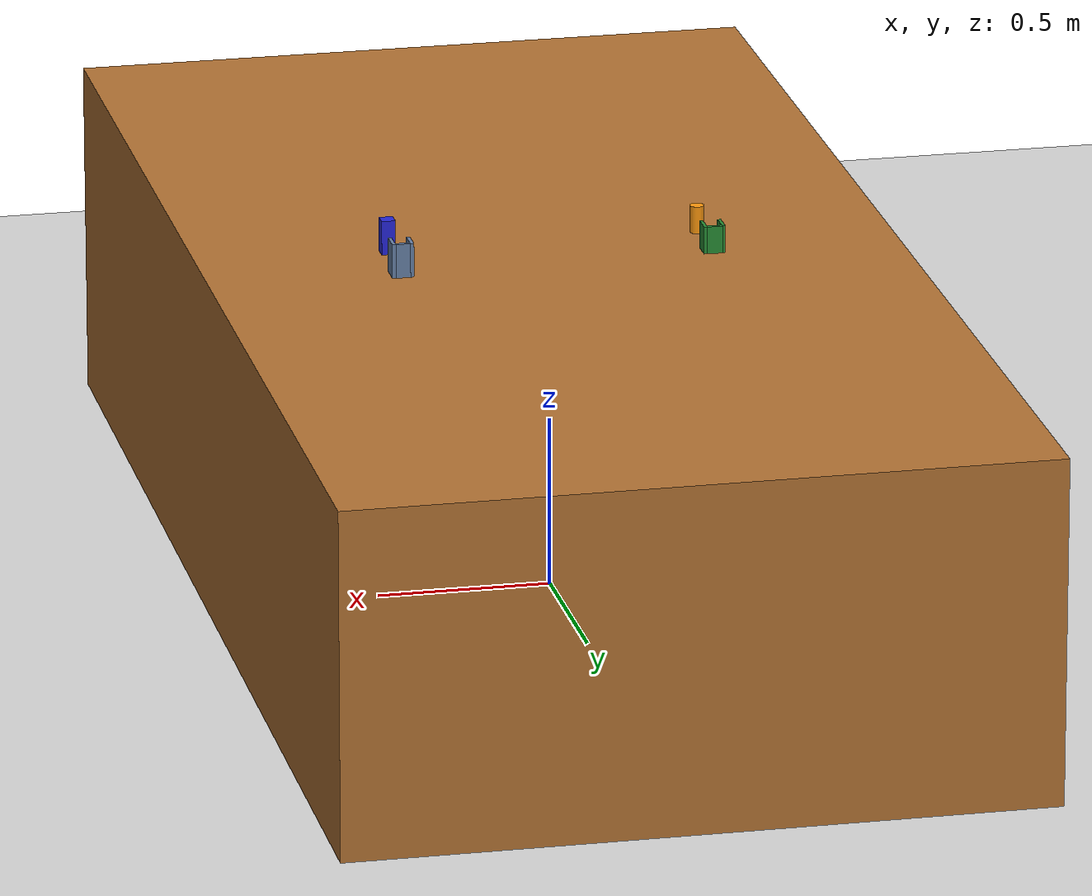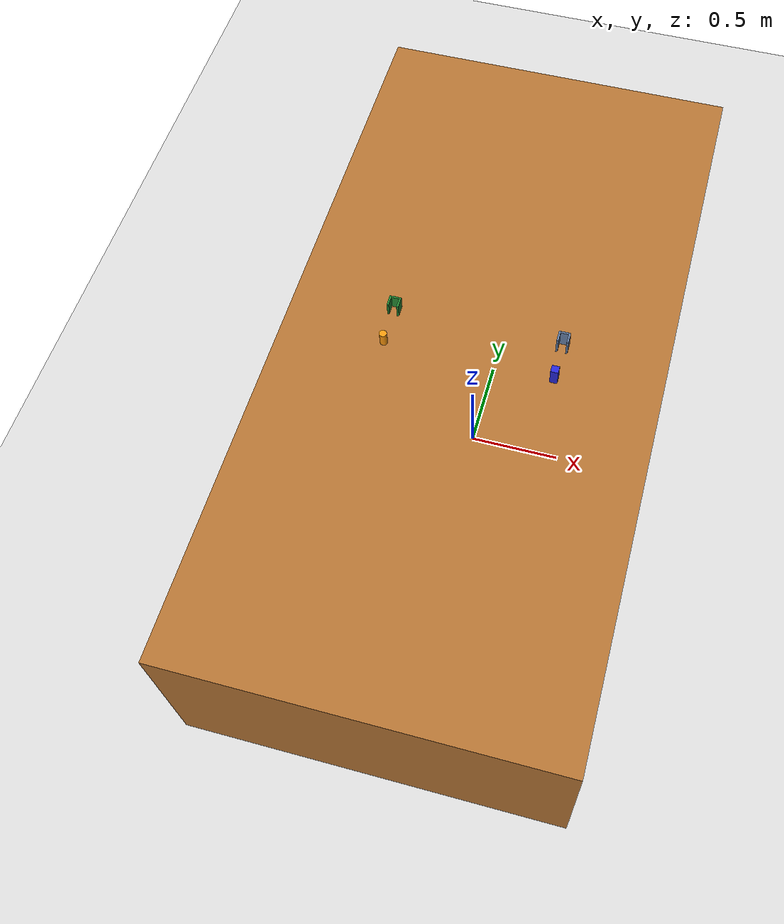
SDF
<?xml version="1.0" ?>
<sdf version="1.9">

  <world name="peg_in_hole_world">

    <physics name="1ms" type="ignored">
      <max_step_size>0.001</max_step_size>
      <real_time_factor>2.0</real_time_factor>
    </physics>

    <plugin filename="gz-sim-physics-system" name="gz::sim::systems::Physics"/>
    <plugin filename="gz-sim-user-commands-system" name="gz::sim::systems::UserCommands"/>
    <plugin filename="gz-sim-scene-broadcaster-system" name="gz::sim::systems::SceneBroadcaster"/>

    <scene>
      <ambient>0.8 0.8 0.8 1</ambient>
      <background>0.7 0.8 0.95 1</background>
      <shadows>true</shadows>
    </scene>

    <!-- Main sun light -->
    <light type="directional" name="sun">
      <cast_shadows>true</cast_shadows>
      <pose>0 0 10 0 0 0</pose>
      <diffuse>1.0 1.0 1.0 1</diffuse>
      <specular>0.5 0.5 0.5 1</specular>
      <attenuation>
        <range>1000</range>
        <constant>0.9</constant>
        <linear>0.01</linear>
        <quadratic>0.001</quadratic>
      </attenuation>
      <direction>-0.5 0.1 -0.9</direction>
    </light>

    <!-- Fill light from the opposite side to reduce harsh shadows -->
    <light type="directional" name="fill_light">
      <cast_shadows>false</cast_shadows>
      <pose>0 0 10 0 0 0</pose>
      <diffuse>0.4 0.4 0.45 1</diffuse>
      <specular>0.1 0.1 0.1 1</specular>
      <direction>0.5 -0.3 -0.7</direction>
    </light>

    <!-- Ground plane -->
    <model name="ground_plane">
      <static>true</static>
      <link name="link">
        <collision name="collision">
          <geometry>
            <plane><normal>0 0 1</normal><size>100 100</size></plane>
          </geometry>
        </collision>
        <visual name="visual">
          <geometry>
            <plane><normal>0 0 1</normal><size>100 100</size></plane>
          </geometry>
          <material>
            <ambient>0.85 0.85 0.85 1</ambient>
            <diffuse>0.85 0.85 0.85 1</diffuse>
            <specular>0.2 0.2 0.2 1</specular>
          </material>
        </visual>
      </link>
    </model>

    <!-- Table -->
    <model name="table">
      <static>true</static>
      <pose>0 0 0.5 0 0 0</pose>
      <link name="link">
        <collision name="collision">
          <geometry><box><size>2.0 4.0 1.0</size></box></geometry>
        </collision>
        <visual name="visual">
          <geometry><box><size>2.0 4.0 1.0</size></box></geometry>
          <material>
            <ambient>0.55 0.35 0.17 1</ambient>
            <diffuse>0.7 0.45 0.2 1</diffuse>
            <specular>0.3 0.25 0.15 1</specular>
          </material>
        </visual>
      </link>
    </model>

    <!-- Blue square peg: 40x40x100 mm, on table in front of robot -->
    <model name="square_peg">
      <pose>0.45 -0.1 1.05 0 0 0</pose>
      <link name="link">
        <inertial>
          <mass>0.15</mass>
          <inertia>
            <ixx>0.00015</ixx><iyy>0.00015</iyy><izz>0.00003</izz>
          </inertia>
        </inertial>
        <collision name="collision">
          <geometry><box><size>0.04 0.04 0.10</size></box></geometry>
          <surface>
            <friction>
              <ode><mu>5.0</mu><mu2>5.0</mu2></ode>
            </friction>
            <contact>
              <ode><kp>1e6</kp><kd>100</kd></ode>
            </contact>
          </surface>
        </collision>
        <visual name="visual">
          <geometry><box><size>0.04 0.04 0.10</size></box></geometry>
          <material>
            <ambient>0.1 0.1 0.7 1</ambient>
            <diffuse>0.15 0.15 0.85 1</diffuse>
            <specular>0.4 0.4 0.5 1</specular>
          </material>
        </visual>
      </link>
    </model>

    <!-- Orange round peg: 40 mm diameter x 80 mm tall, on table -->
    <model name="round_peg">
      <pose>-0.45 -0.1 1.04 0 0 0</pose>
      <link name="link">
        <inertial>
          <mass>0.10</mass>
          <inertia>
            <ixx>0.00006</ixx><iyy>0.00006</iyy><izz>0.00002</izz>
          </inertia>
        </inertial>
        <collision name="collision">
          <geometry>
            <cylinder><radius>0.02</radius><length>0.08</length></cylinder>
          </geometry>
          <surface>
            <friction>
              <ode><mu>5.0</mu><mu2>5.0</mu2></ode>
            </friction>
            <contact>
              <ode><kp>1e6</kp><kd>100</kd></ode>
            </contact>
          </surface>
        </collision>
        <visual name="visual">
          <geometry>
            <cylinder><radius>0.02</radius><length>0.08</length></cylinder>
          </geometry>
          <material>
            <ambient>0.9 0.5 0.0 1</ambient>
            <diffuse>1.0 0.6 0.05 1</diffuse>
            <specular>0.5 0.4 0.2 1</specular>
          </material>
        </visual>
      </link>
    </model>

    <!-- Square hole fixture (steel blue) — 42 mm inner gap for 40 mm peg
         Clearance: 1.0 mm per side -->
    <model name="square_hole_fixture">
      <static>true</static>
      <pose>0.45 0.1 1.05 0 0 0</pose>
      <link name="walls">
        <collision name="left_wall_col">
          <pose>-0.026 0 0 0 0 0</pose>
          <geometry><box><size>0.01 0.06 0.10</size></box></geometry>
        </collision>
        <visual name="left_wall_vis">
          <pose>-0.026 0 0 0 0 0</pose>
          <geometry><box><size>0.01 0.06 0.10</size></box></geometry>
          <material>
            <ambient>0.3 0.4 0.55 1</ambient>
            <diffuse>0.4 0.5 0.65 1</diffuse>
            <specular>0.5 0.5 0.5 1</specular>
          </material>
        </visual>

        <collision name="right_wall_col">
          <pose>0.026 0 0 0 0 0</pose>
          <geometry><box><size>0.01 0.06 0.10</size></box></geometry>
        </collision>
        <visual name="right_wall_vis">
          <pose>0.026 0 0 0 0 0</pose>
          <geometry><box><size>0.01 0.06 0.10</size></box></geometry>
          <material>
            <ambient>0.3 0.4 0.55 1</ambient>
            <diffuse>0.4 0.5 0.65 1</diffuse>
            <specular>0.5 0.5 0.5 1</specular>
          </material>
        </visual>

        <collision name="back_wall_col">
          <pose>0 0.026 0 0 0 0</pose>
          <geometry><box><size>0.042 0.01 0.10</size></box></geometry>
        </collision>
        <visual name="back_wall_vis">
          <pose>0 0.026 0 0 0 0</pose>
          <geometry><box><size>0.042 0.01 0.10</size></box></geometry>
          <material>
            <ambient>0.3 0.4 0.55 1</ambient>
            <diffuse>0.4 0.5 0.65 1</diffuse>
            <specular>0.5 0.5 0.5 1</specular>
          </material>
        </visual>
      </link>
    </model>

    <!-- Round hole fixture (dark green) — 44 mm inner gap for 40 mm-dia peg
         Clearance: 2.0 mm per side -->
    <model name="round_hole_fixture">
      <static>true</static>
      <pose>-0.45 0.1 1.05 0 0 0</pose>
      <link name="walls">
        <collision name="left_wall_col">
          <pose>-0.026 0 0 0 0 0</pose>
          <geometry><box><size>0.01 0.06 0.08</size></box></geometry>
        </collision>
        <visual name="left_wall_vis">
          <pose>-0.026 0 0 0 0 0</pose>
          <geometry><box><size>0.01 0.06 0.08</size></box></geometry>
          <material>
            <ambient>0.1 0.45 0.15 1</ambient>
            <diffuse>0.15 0.55 0.2 1</diffuse>
            <specular>0.3 0.4 0.3 1</specular>
          </material>
        </visual>

        <collision name="right_wall_col">
          <pose>0.026 0 0 0 0 0</pose>
          <geometry><box><size>0.01 0.06 0.08</size></box></geometry>
        </collision>
        <visual name="right_wall_vis">
          <pose>0.026 0 0 0 0 0</pose>
          <geometry><box><size>0.01 0.06 0.08</size></box></geometry>
          <material>
            <ambient>0.1 0.45 0.15 1</ambient>
            <diffuse>0.15 0.55 0.2 1</diffuse>
            <specular>0.3 0.4 0.3 1</specular>
          </material>
        </visual>

        <collision name="back_wall_col">
          <pose>0 0.026 0 0 0 0</pose>
          <geometry><box><size>0.044 0.01 0.08</size></box></geometry>
        </collision>
        <visual name="back_wall_vis">
          <pose>0 0.026 0 0 0 0</pose>
          <geometry><box><size>0.044 0.01 0.08</size></box></geometry>
          <material>
            <ambient>0.1 0.45 0.15 1</ambient>
            <diffuse>0.15 0.55 0.2 1</diffuse>
            <specular>0.3 0.4 0.3 1</specular>
          </material>
        </visual>
      </link>
    </model>

  </world>
</sdf>
